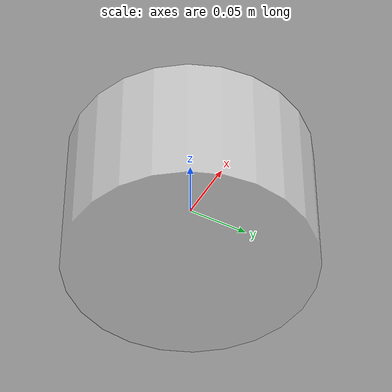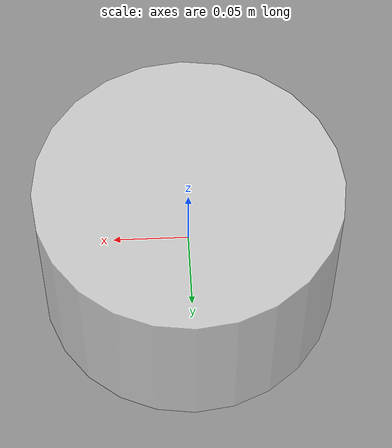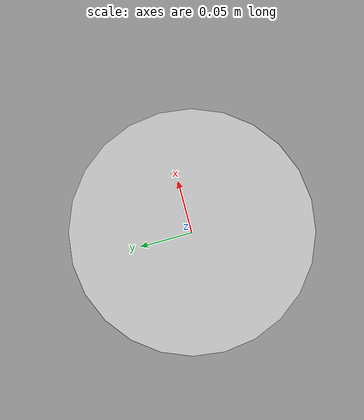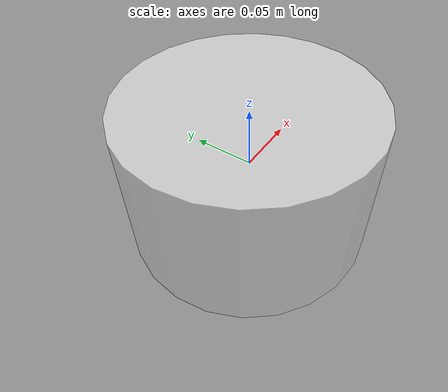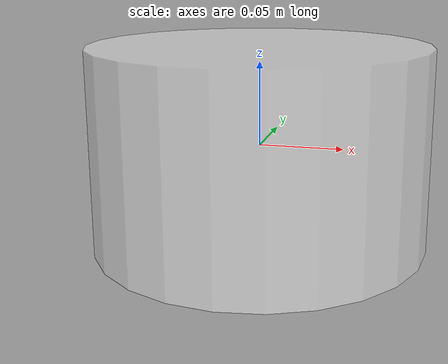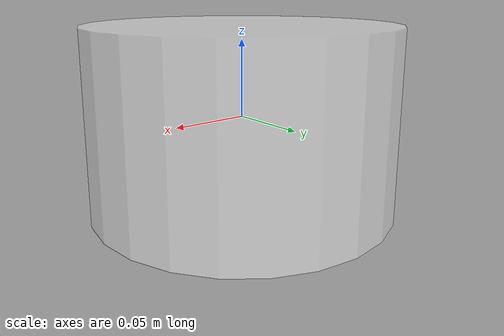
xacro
<?xml version="1.0"?>
<robot xmlns:xacro='http://www.ros.org/wiki/xacro' name="first_robot">
    <xacro:macro name="base_link" params="length radius">
        <link name="base_link">
        <!-- 部件的外观描述 -->
            <visual>
                <!-- 基于本身几何中心的偏移量和旋转量 -->
                <origin xyz="0.0 0.0 0.0" rpy="0.0 0.0 0.0"/>

                <!-- 形状 -->
                <geometry>
                    <!-- 圆柱体 -->
                    <cylinder radius="${radius}"  length="${length}"/>
                </geometry>

                <!-- 颜色 -->
                <material name="white">
                    <!-- 最后一个值是透明度，1表示不透明 -->
                    <color rgba="1 1 1 0.5"/>
                </material>
            </visual>
        </link>
    </xacro:macro>

    <xacro:macro name="imu_link" params="imu_name">
        <!-- imu子部件 -->
        <link name="${imu_name}_link">
            <!-- 部件的外观描述 -->
            <visual>
                <!-- 基于本身几何中心的偏移量和旋转量 -->
                <origin xyz="0.0 0.0 0.0" rpy="0.0 0.0 0.0"/>

                <!-- 形状 -->
                <geometry>
                    <!-- 长方体 -->
                    <box size="0.02 0.02 0.02"/>
                </geometry>

                <!-- 颜色 -->
                <material name="black">
                    <!-- 最后一个值是透明度，1表示不透明 -->
                    <color rgba="0 0 0 0.5"/>
                </material>
            </visual>
        </link>

        <joint name="${imu_name}_joint" type="fixed">
            <!-- 连接的父部件 -->
            <parent link="base_link"/>
            <!-- 连接的子部件 -->
            <child link="${imu_name}_link"/>
            <!-- 基于父部件的偏移量和旋转量 -->
            <origin xyz="0.0 0.0 0.03" rpy="0.0 0.0 0.0"/>
        </joint>
    </xacro:macro>

    <xacro:base_link length="0.12" radius="0.1"/>
    <xacro:imu_link imu_name="imu0"/>

</robot>
